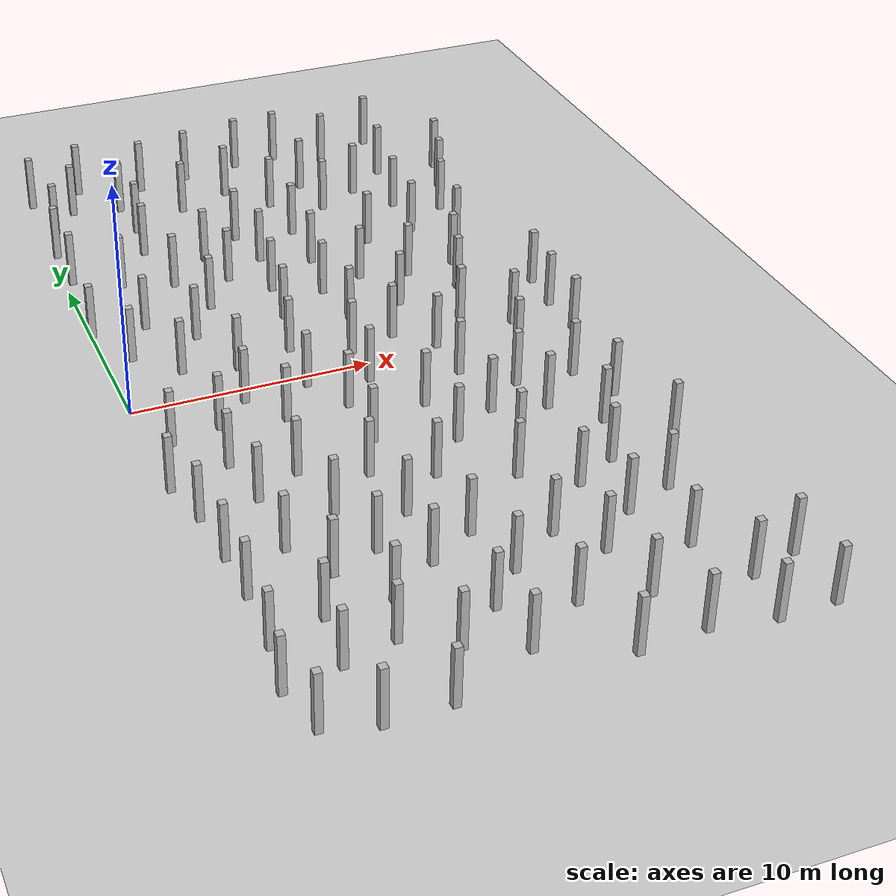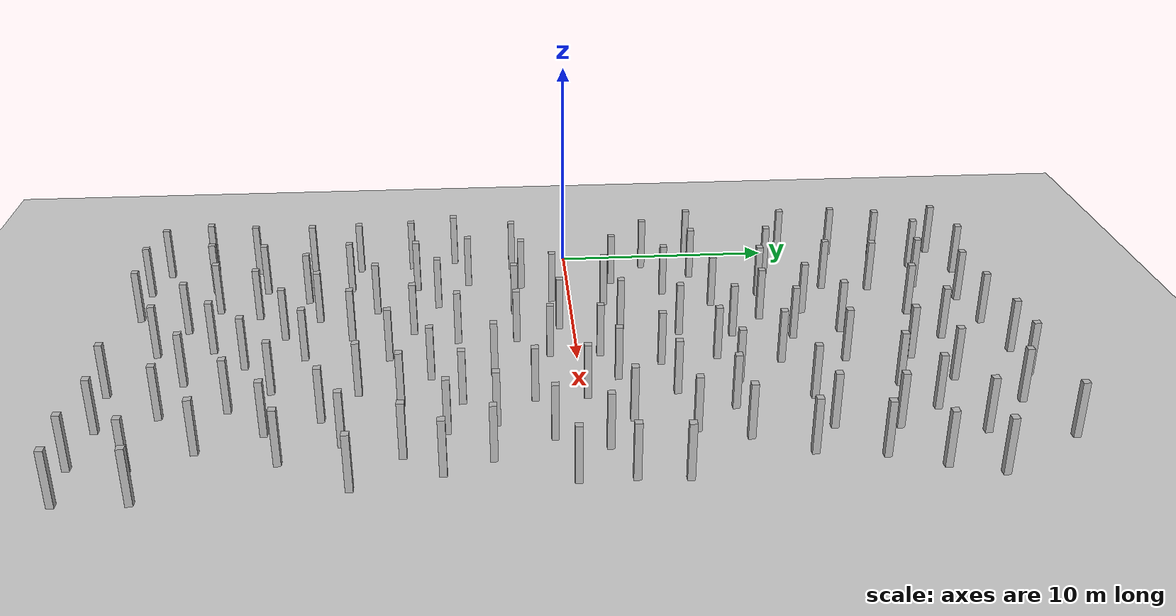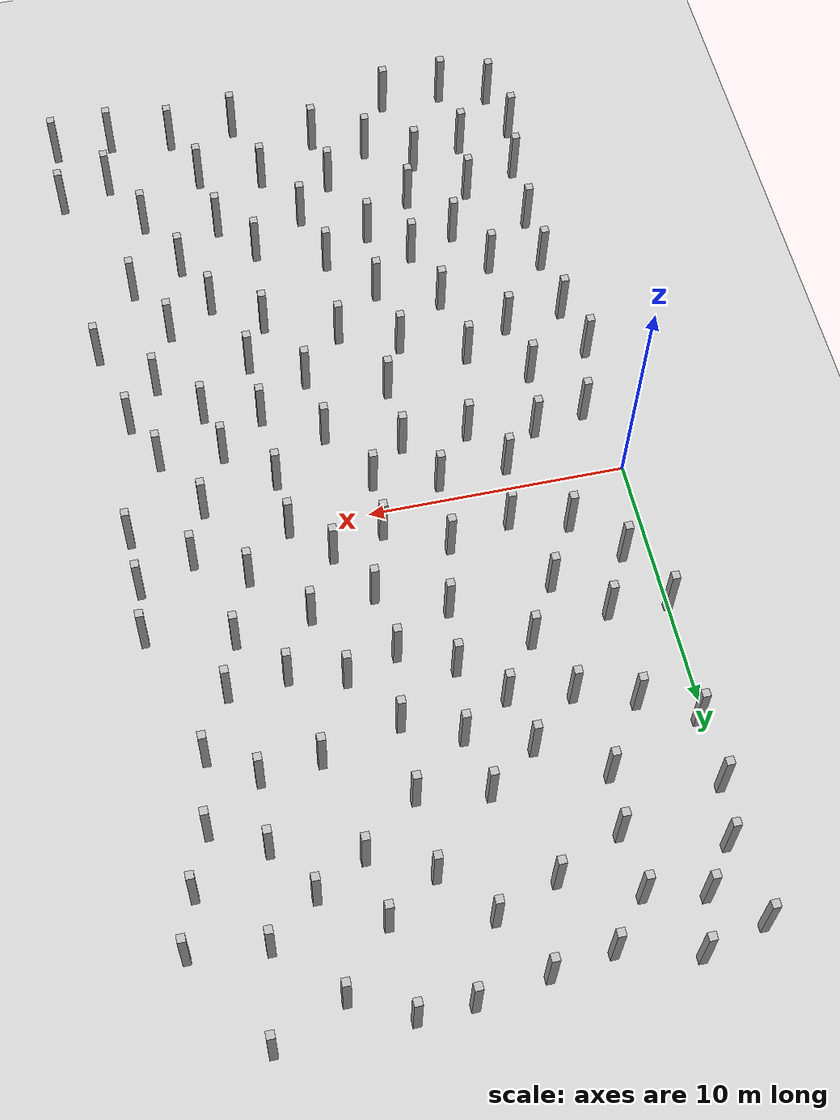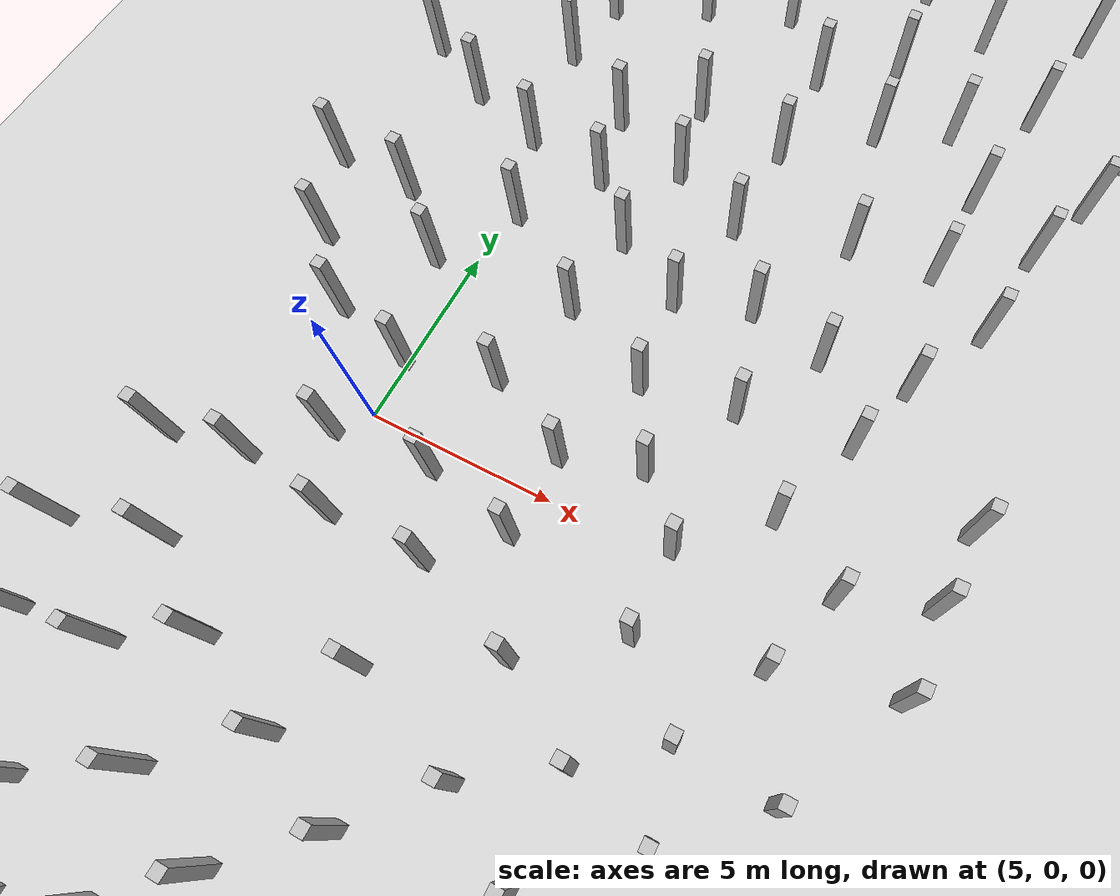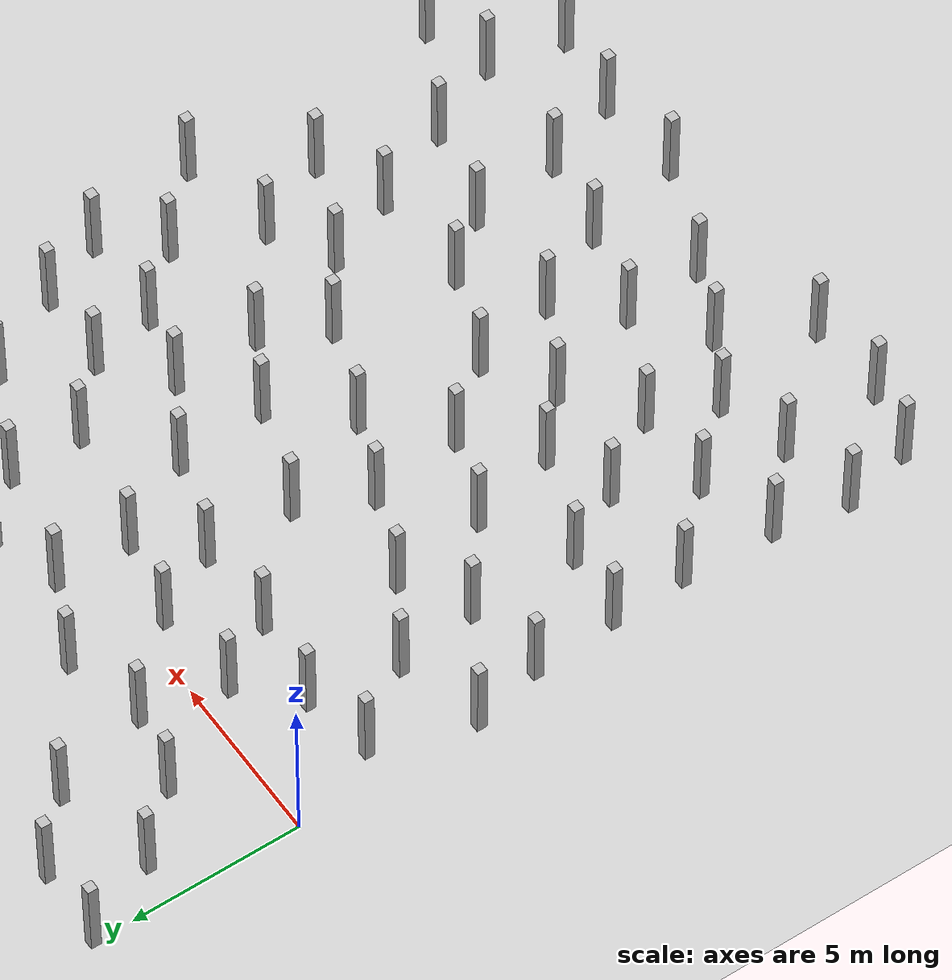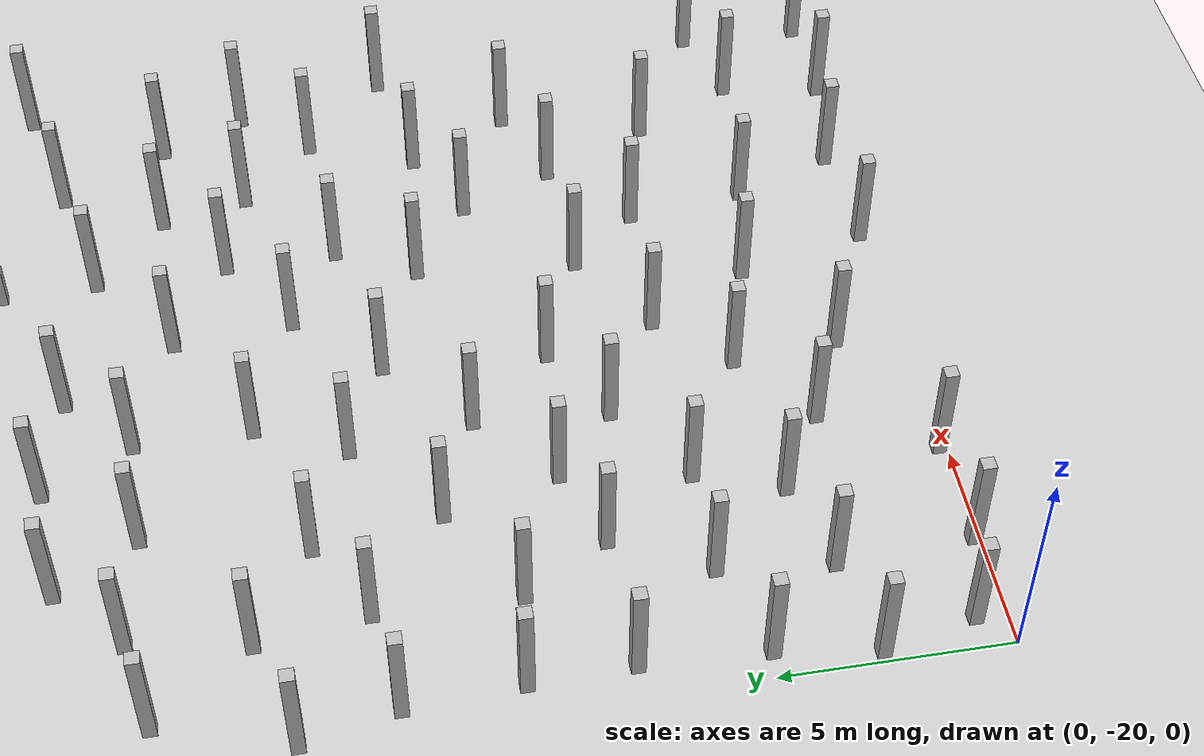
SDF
<sdf version="1.6">
 <world name="random_boxes_100x40_600">
  <include><uri>model://sun</uri></include>
  <include><uri>model://ground_plane</uri></include>
  <model name="box_6">
   <static>true</static>
   <pose>17.730 8.715 1.250 0 0 0</pose>
   <link name="link">
    <visual name="visual"><geometry><box><size>0.3 0.3 2.5</size></box></geometry></visual>
    <collision name="collision"><geometry><box><size>0.3 0.3 2.5</size></box></geometry></collision>
   </link>
  </model>
  <model name="box_9">
   <static>true</static>
   <pose>18.113 11.450 1.250 0 0 0</pose>
   <link name="link">
    <visual name="visual"><geometry><box><size>0.3 0.3 2.5</size></box></geometry></visual>
    <collision name="collision"><geometry><box><size>0.3 0.3 2.5</size></box></geometry></collision>
   </link>
  </model>
  <model name="box_10">
   <static>true</static>
   <pose>19.135 3.637 1.250 0 0 0</pose>
   <link name="link">
    <visual name="visual"><geometry><box><size>0.3 0.3 2.5</size></box></geometry></visual>
    <collision name="collision"><geometry><box><size>0.3 0.3 2.5</size></box></geometry></collision>
   </link>
  </model>
  <model name="box_13">
   <static>true</static>
   <pose>16.552 6.433 1.250 0 0 0</pose>
   <link name="link">
    <visual name="visual"><geometry><box><size>0.3 0.3 2.5</size></box></geometry></visual>
    <collision name="collision"><geometry><box><size>0.3 0.3 2.5</size></box></geometry></collision>
   </link>
  </model>
  <model name="box_14">
   <static>true</static>
   <pose>19.557 15.617 1.250 0 0 0</pose>
   <link name="link">
    <visual name="visual"><geometry><box><size>0.3 0.3 2.5</size></box></geometry></visual>
    <collision name="collision"><geometry><box><size>0.3 0.3 2.5</size></box></geometry></collision>
   </link>
  </model>
  <model name="box_15">
   <static>true</static>
   <pose>15.897 4.396 1.250 0 0 0</pose>
   <link name="link">
    <visual name="visual"><geometry><box><size>0.3 0.3 2.5</size></box></geometry></visual>
    <collision name="collision"><geometry><box><size>0.3 0.3 2.5</size></box></geometry></collision>
   </link>
  </model>
  <model name="box_16">
   <static>true</static>
   <pose>16.157 12.532 1.250 0 0 0</pose>
   <link name="link">
    <visual name="visual"><geometry><box><size>0.3 0.3 2.5</size></box></geometry></visual>
    <collision name="collision"><geometry><box><size>0.3 0.3 2.5</size></box></geometry></collision>
   </link>
  </model>
  <model name="box_23">
   <static>true</static>
   <pose>16.730 15.923 1.250 0 0 0</pose>
   <link name="link">
    <visual name="visual"><geometry><box><size>0.3 0.3 2.5</size></box></geometry></visual>
    <collision name="collision"><geometry><box><size>0.3 0.3 2.5</size></box></geometry></collision>
   </link>
  </model>
  <model name="box_25">
   <static>true</static>
   <pose>13.012 3.993 1.250 0 0 0</pose>
   <link name="link">
    <visual name="visual"><geometry><box><size>0.3 0.3 2.5</size></box></geometry></visual>
    <collision name="collision"><geometry><box><size>0.3 0.3 2.5</size></box></geometry></collision>
   </link>
  </model>
  <model name="box_26">
   <static>true</static>
   <pose>15.997 9.900 1.250 0 0 0</pose>
   <link name="link">
    <visual name="visual"><geometry><box><size>0.3 0.3 2.5</size></box></geometry></visual>
    <collision name="collision"><geometry><box><size>0.3 0.3 2.5</size></box></geometry></collision>
   </link>
  </model>
  <model name="box_27">
   <static>true</static>
   <pose>17.293 19.288 1.250 0 0 0</pose>
   <link name="link">
    <visual name="visual"><geometry><box><size>0.3 0.3 2.5</size></box></geometry></visual>
    <collision name="collision"><geometry><box><size>0.3 0.3 2.5</size></box></geometry></collision>
   </link>
  </model>
  <model name="box_28">
   <static>true</static>
   <pose>10.570 3.613 1.250 0 0 0</pose>
   <link name="link">
    <visual name="visual"><geometry><box><size>0.3 0.3 2.5</size></box></geometry></visual>
    <collision name="collision"><geometry><box><size>0.3 0.3 2.5</size></box></geometry></collision>
   </link>
  </model>
  <model name="box_29">
   <static>true</static>
   <pose>14.891 14.481 1.250 0 0 0</pose>
   <link name="link">
    <visual name="visual"><geometry><box><size>0.3 0.3 2.5</size></box></geometry></visual>
    <collision name="collision"><geometry><box><size>0.3 0.3 2.5</size></box></geometry></collision>
   </link>
  </model>
  <model name="box_30">
   <static>true</static>
   <pose>14.311 6.225 1.250 0 0 0</pose>
   <link name="link">
    <visual name="visual"><geometry><box><size>0.3 0.3 2.5</size></box></geometry></visual>
    <collision name="collision"><geometry><box><size>0.3 0.3 2.5</size></box></geometry></collision>
   </link>
  </model>
  <model name="box_33">
   <static>true</static>
   <pose>9.686 1.023 1.250 0 0 0</pose>
   <link name="link">
    <visual name="visual"><geometry><box><size>0.3 0.3 2.5</size></box></geometry></visual>
    <collision name="collision"><geometry><box><size>0.3 0.3 2.5</size></box></geometry></collision>
   </link>
  </model>
  <model name="box_34">
   <static>true</static>
   <pose>7.356 2.145 1.250 0 0 0</pose>
   <link name="link">
    <visual name="visual"><geometry><box><size>0.3 0.3 2.5</size></box></geometry></visual>
    <collision name="collision"><geometry><box><size>0.3 0.3 2.5</size></box></geometry></collision>
   </link>
  </model>
  <model name="box_35">
   <static>true</static>
   <pose>13.737 9.640 1.250 0 0 0</pose>
   <link name="link">
    <visual name="visual"><geometry><box><size>0.3 0.3 2.5</size></box></geometry></visual>
    <collision name="collision"><geometry><box><size>0.3 0.3 2.5</size></box></geometry></collision>
   </link>
  </model>
  <model name="box_37">
   <static>true</static>
   <pose>4.947 1.573 1.250 0 0 0</pose>
   <link name="link">
    <visual name="visual"><geometry><box><size>0.3 0.3 2.5</size></box></geometry></visual>
    <collision name="collision"><geometry><box><size>0.3 0.3 2.5</size></box></geometry></collision>
   </link>
  </model>
  <model name="box_41">
   <static>true</static>
   <pose>9.607 -1.170 1.250 0 0 0</pose>
   <link name="link">
    <visual name="visual"><geometry><box><size>0.3 0.3 2.5</size></box></geometry></visual>
    <collision name="collision"><geometry><box><size>0.3 0.3 2.5</size></box></geometry></collision>
   </link>
  </model>
  <model name="box_43">
   <static>true</static>
   <pose>10.990 -3.620 1.250 0 0 0</pose>
   <link name="link">
    <visual name="visual"><geometry><box><size>0.3 0.3 2.5</size></box></geometry></visual>
    <collision name="collision"><geometry><box><size>0.3 0.3 2.5</size></box></geometry></collision>
   </link>
  </model>
  <model name="box_44">
   <static>true</static>
   <pose>11.214 -6.315 1.250 0 0 0</pose>
   <link name="link">
    <visual name="visual"><geometry><box><size>0.3 0.3 2.5</size></box></geometry></visual>
    <collision name="collision"><geometry><box><size>0.3 0.3 2.5</size></box></geometry></collision>
   </link>
  </model>
  <model name="box_45">
   <static>true</static>
   <pose>18.938 13.570 1.250 0 0 0</pose>
   <link name="link">
    <visual name="visual"><geometry><box><size>0.3 0.3 2.5</size></box></geometry></visual>
    <collision name="collision"><geometry><box><size>0.3 0.3 2.5</size></box></geometry></collision>
   </link>
  </model>
  <model name="box_47">
   <static>true</static>
   <pose>12.987 13.457 1.250 0 0 0</pose>
   <link name="link">
    <visual name="visual"><geometry><box><size>0.3 0.3 2.5</size></box></geometry></visual>
    <collision name="collision"><geometry><box><size>0.3 0.3 2.5</size></box></geometry></collision>
   </link>
  </model>
  <model name="box_48">
   <static>true</static>
   <pose>7.132 -0.618 1.250 0 0 0</pose>
   <link name="link">
    <visual name="visual"><geometry><box><size>0.3 0.3 2.5</size></box></geometry></visual>
    <collision name="collision"><geometry><box><size>0.3 0.3 2.5</size></box></geometry></collision>
   </link>
  </model>
  <model name="box_51">
   <static>true</static>
   <pose>19.031 -0.583 1.250 0 0 0</pose>
   <link name="link">
    <visual name="visual"><geometry><box><size>0.3 0.3 2.5</size></box></geometry></visual>
    <collision name="collision"><geometry><box><size>0.3 0.3 2.5</size></box></geometry></collision>
   </link>
  </model>
  <model name="box_52">
   <static>true</static>
   <pose>14.612 18.134 1.250 0 0 0</pose>
   <link name="link">
    <visual name="visual"><geometry><box><size>0.3 0.3 2.5</size></box></geometry></visual>
    <collision name="collision"><geometry><box><size>0.3 0.3 2.5</size></box></geometry></collision>
   </link>
  </model>
  <model name="box_55">
   <static>true</static>
   <pose>8.155 -2.593 1.250 0 0 0</pose>
   <link name="link">
    <visual name="visual"><geometry><box><size>0.3 0.3 2.5</size></box></geometry></visual>
    <collision name="collision"><geometry><box><size>0.3 0.3 2.5</size></box></geometry></collision>
   </link>
  </model>
  <model name="box_57">
   <static>true</static>
   <pose>10.833 11.682 1.250 0 0 0</pose>
   <link name="link">
    <visual name="visual"><geometry><box><size>0.3 0.3 2.5</size></box></geometry></visual>
    <collision name="collision"><geometry><box><size>0.3 0.3 2.5</size></box></geometry></collision>
   </link>
  </model>
  <model name="box_58">
   <static>true</static>
   <pose>8.018 4.738 1.250 0 0 0</pose>
   <link name="link">
    <visual name="visual"><geometry><box><size>0.3 0.3 2.5</size></box></geometry></visual>
    <collision name="collision"><geometry><box><size>0.3 0.3 2.5</size></box></geometry></collision>
   </link>
  </model>
  <model name="box_59">
   <static>true</static>
   <pose>14.959 1.951 1.250 0 0 0</pose>
   <link name="link">
    <visual name="visual"><geometry><box><size>0.3 0.3 2.5</size></box></geometry></visual>
    <collision name="collision"><geometry><box><size>0.3 0.3 2.5</size></box></geometry></collision>
   </link>
  </model>
  <model name="box_60">
   <static>true</static>
   <pose>10.274 6.115 1.250 0 0 0</pose>
   <link name="link">
    <visual name="visual"><geometry><box><size>0.3 0.3 2.5</size></box></geometry></visual>
    <collision name="collision"><geometry><box><size>0.3 0.3 2.5</size></box></geometry></collision>
   </link>
  </model>
  <model name="box_61">
   <static>true</static>
   <pose>12.498 19.236 1.250 0 0 0</pose>
   <link name="link">
    <visual name="visual"><geometry><box><size>0.3 0.3 2.5</size></box></geometry></visual>
    <collision name="collision"><geometry><box><size>0.3 0.3 2.5</size></box></geometry></collision>
   </link>
  </model>
  <model name="box_62">
   <static>true</static>
   <pose>13.185 -1.972 1.250 0 0 0</pose>
   <link name="link">
    <visual name="visual"><geometry><box><size>0.3 0.3 2.5</size></box></geometry></visual>
    <collision name="collision"><geometry><box><size>0.3 0.3 2.5</size></box></geometry></collision>
   </link>
  </model>
  <model name="box_63">
   <static>true</static>
   <pose>13.267 -7.492 1.250 0 0 0</pose>
   <link name="link">
    <visual name="visual"><geometry><box><size>0.3 0.3 2.5</size></box></geometry></visual>
    <collision name="collision"><geometry><box><size>0.3 0.3 2.5</size></box></geometry></collision>
   </link>
  </model>
  <model name="box_64">
   <static>true</static>
   <pose>12.338 -9.302 1.250 0 0 0</pose>
   <link name="link">
    <visual name="visual"><geometry><box><size>0.3 0.3 2.5</size></box></geometry></visual>
    <collision name="collision"><geometry><box><size>0.3 0.3 2.5</size></box></geometry></collision>
   </link>
  </model>
  <model name="box_65">
   <static>true</static>
   <pose>14.975 -3.578 1.250 0 0 0</pose>
   <link name="link">
    <visual name="visual"><geometry><box><size>0.3 0.3 2.5</size></box></geometry></visual>
    <collision name="collision"><geometry><box><size>0.3 0.3 2.5</size></box></geometry></collision>
   </link>
  </model>
  <model name="box_66">
   <static>true</static>
   <pose>2.736 2.137 1.250 0 0 0</pose>
   <link name="link">
    <visual name="visual"><geometry><box><size>0.3 0.3 2.5</size></box></geometry></visual>
    <collision name="collision"><geometry><box><size>0.3 0.3 2.5</size></box></geometry></collision>
   </link>
  </model>
  <model name="box_67">
   <static>true</static>
   <pose>12.713 15.901 1.250 0 0 0</pose>
   <link name="link">
    <visual name="visual"><geometry><box><size>0.3 0.3 2.5</size></box></geometry></visual>
    <collision name="collision"><geometry><box><size>0.3 0.3 2.5</size></box></geometry></collision>
   </link>
  </model>
  <model name="box_68">
   <static>true</static>
   <pose>10.743 8.854 1.250 0 0 0</pose>
   <link name="link">
    <visual name="visual"><geometry><box><size>0.3 0.3 2.5</size></box></geometry></visual>
    <collision name="collision"><geometry><box><size>0.3 0.3 2.5</size></box></geometry></collision>
   </link>
  </model>
  <model name="box_70">
   <static>true</static>
   <pose>10.494 19.153 1.250 0 0 0</pose>
   <link name="link">
    <visual name="visual"><geometry><box><size>0.3 0.3 2.5</size></box></geometry></visual>
    <collision name="collision"><geometry><box><size>0.3 0.3 2.5</size></box></geometry></collision>
   </link>
  </model>
  <model name="box_71">
   <static>true</static>
   <pose>9.514 -8.173 1.250 0 0 0</pose>
   <link name="link">
    <visual name="visual"><geometry><box><size>0.3 0.3 2.5</size></box></geometry></visual>
    <collision name="collision"><geometry><box><size>0.3 0.3 2.5</size></box></geometry></collision>
   </link>
  </model>
  <model name="box_72">
   <static>true</static>
   <pose>7.847 18.748 1.250 0 0 0</pose>
   <link name="link">
    <visual name="visual"><geometry><box><size>0.3 0.3 2.5</size></box></geometry></visual>
    <collision name="collision"><geometry><box><size>0.3 0.3 2.5</size></box></geometry></collision>
   </link>
  </model>
  <model name="box_74">
   <static>true</static>
   <pose>8.293 7.130 1.250 0 0 0</pose>
   <link name="link">
    <visual name="visual"><geometry><box><size>0.3 0.3 2.5</size></box></geometry></visual>
    <collision name="collision"><geometry><box><size>0.3 0.3 2.5</size></box></geometry></collision>
   </link>
  </model>
  <model name="box_75">
   <static>true</static>
   <pose>5.351 6.628 1.250 0 0 0</pose>
   <link name="link">
    <visual name="visual"><geometry><box><size>0.3 0.3 2.5</size></box></geometry></visual>
    <collision name="collision"><geometry><box><size>0.3 0.3 2.5</size></box></geometry></collision>
   </link>
  </model>
  <model name="box_76">
   <static>true</static>
   <pose>16.117 -1.301 1.250 0 0 0</pose>
   <link name="link">
    <visual name="visual"><geometry><box><size>0.3 0.3 2.5</size></box></geometry></visual>
    <collision name="collision"><geometry><box><size>0.3 0.3 2.5</size></box></geometry></collision>
   </link>
  </model>
  <model name="box_78">
   <static>true</static>
   <pose>13.120 0.209 1.250 0 0 0</pose>
   <link name="link">
    <visual name="visual"><geometry><box><size>0.3 0.3 2.5</size></box></geometry></visual>
    <collision name="collision"><geometry><box><size>0.3 0.3 2.5</size></box></geometry></collision>
   </link>
  </model>
  <model name="box_79">
   <static>true</static>
   <pose>11.712 1.638 1.250 0 0 0</pose>
   <link name="link">
    <visual name="visual"><geometry><box><size>0.3 0.3 2.5</size></box></geometry></visual>
    <collision name="collision"><geometry><box><size>0.3 0.3 2.5</size></box></geometry></collision>
   </link>
  </model>
  <model name="box_80">
   <static>true</static>
   <pose>4.062 4.485 1.250 0 0 0</pose>
   <link name="link">
    <visual name="visual"><geometry><box><size>0.3 0.3 2.5</size></box></geometry></visual>
    <collision name="collision"><geometry><box><size>0.3 0.3 2.5</size></box></geometry></collision>
   </link>
  </model>
  <model name="box_82">
   <static>true</static>
   <pose>7.594 -9.944 1.250 0 0 0</pose>
   <link name="link">
    <visual name="visual"><geometry><box><size>0.3 0.3 2.5</size></box></geometry></visual>
    <collision name="collision"><geometry><box><size>0.3 0.3 2.5</size></box></geometry></collision>
   </link>
  </model>
  <model name="box_83">
   <static>true</static>
   <pose>8.157 -5.200 1.250 0 0 0</pose>
   <link name="link">
    <visual name="visual"><geometry><box><size>0.3 0.3 2.5</size></box></geometry></visual>
    <collision name="collision"><geometry><box><size>0.3 0.3 2.5</size></box></geometry></collision>
   </link>
  </model>
  <model name="box_85">
   <static>true</static>
   <pose>9.139 16.491 1.250 0 0 0</pose>
   <link name="link">
    <visual name="visual"><geometry><box><size>0.3 0.3 2.5</size></box></geometry></visual>
    <collision name="collision"><geometry><box><size>0.3 0.3 2.5</size></box></geometry></collision>
   </link>
  </model>
  <model name="box_86">
   <static>true</static>
   <pose>5.797 -11.557 1.250 0 0 0</pose>
   <link name="link">
    <visual name="visual"><geometry><box><size>0.3 0.3 2.5</size></box></geometry></visual>
    <collision name="collision"><geometry><box><size>0.3 0.3 2.5</size></box></geometry></collision>
   </link>
  </model>
  <model name="box_87">
   <static>true</static>
   <pose>14.249 -10.650 1.250 0 0 0</pose>
   <link name="link">
    <visual name="visual"><geometry><box><size>0.3 0.3 2.5</size></box></geometry></visual>
    <collision name="collision"><geometry><box><size>0.3 0.3 2.5</size></box></geometry></collision>
   </link>
  </model>
  <model name="box_88">
   <static>true</static>
   <pose>16.068 -9.671 1.250 0 0 0</pose>
   <link name="link">
    <visual name="visual"><geometry><box><size>0.3 0.3 2.5</size></box></geometry></visual>
    <collision name="collision"><geometry><box><size>0.3 0.3 2.5</size></box></geometry></collision>
   </link>
  </model>
  <model name="box_92">
   <static>true</static>
   <pose>6.787 15.615 1.250 0 0 0</pose>
   <link name="link">
    <visual name="visual"><geometry><box><size>0.3 0.3 2.5</size></box></geometry></visual>
    <collision name="collision"><geometry><box><size>0.3 0.3 2.5</size></box></geometry></collision>
   </link>
  </model>
  <model name="box_95">
   <static>true</static>
   <pose>5.149 -8.977 1.250 0 0 0</pose>
   <link name="link">
    <visual name="visual"><geometry><box><size>0.3 0.3 2.5</size></box></geometry></visual>
    <collision name="collision"><geometry><box><size>0.3 0.3 2.5</size></box></geometry></collision>
   </link>
  </model>
  <model name="box_98">
   <static>true</static>
   <pose>5.330 -14.362 1.250 0 0 0</pose>
   <link name="link">
    <visual name="visual"><geometry><box><size>0.3 0.3 2.5</size></box></geometry></visual>
    <collision name="collision"><geometry><box><size>0.3 0.3 2.5</size></box></geometry></collision>
   </link>
  </model>
  <model name="box_99">
   <static>true</static>
   <pose>8.660 9.831 1.250 0 0 0</pose>
   <link name="link">
    <visual name="visual"><geometry><box><size>0.3 0.3 2.5</size></box></geometry></visual>
    <collision name="collision"><geometry><box><size>0.3 0.3 2.5</size></box></geometry></collision>
   </link>
  </model>
  <model name="box_101">
   <static>true</static>
   <pose>2.793 -14.334 1.250 0 0 0</pose>
   <link name="link">
    <visual name="visual"><geometry><box><size>0.3 0.3 2.5</size></box></geometry></visual>
    <collision name="collision"><geometry><box><size>0.3 0.3 2.5</size></box></geometry></collision>
   </link>
  </model>
  <model name="box_103">
   <static>true</static>
   <pose>17.202 -11.999 1.250 0 0 0</pose>
   <link name="link">
    <visual name="visual"><geometry><box><size>0.3 0.3 2.5</size></box></geometry></visual>
    <collision name="collision"><geometry><box><size>0.3 0.3 2.5</size></box></geometry></collision>
   </link>
  </model>
  <model name="box_105">
   <static>true</static>
   <pose>0.733 -12.309 1.250 0 0 0</pose>
   <link name="link">
    <visual name="visual"><geometry><box><size>0.3 0.3 2.5</size></box></geometry></visual>
    <collision name="collision"><geometry><box><size>0.3 0.3 2.5</size></box></geometry></collision>
   </link>
  </model>
  <model name="box_106">
   <static>true</static>
   <pose>15.127 -12.809 1.250 0 0 0</pose>
   <link name="link">
    <visual name="visual"><geometry><box><size>0.3 0.3 2.5</size></box></geometry></visual>
    <collision name="collision"><geometry><box><size>0.3 0.3 2.5</size></box></geometry></collision>
   </link>
  </model>
  <model name="box_108">
   <static>true</static>
   <pose>0.665 -10.064 1.250 0 0 0</pose>
   <link name="link">
    <visual name="visual"><geometry><box><size>0.3 0.3 2.5</size></box></geometry></visual>
    <collision name="collision"><geometry><box><size>0.3 0.3 2.5</size></box></geometry></collision>
   </link>
  </model>
  <model name="box_110">
   <static>true</static>
   <pose>8.229 12.087 1.250 0 0 0</pose>
   <link name="link">
    <visual name="visual"><geometry><box><size>0.3 0.3 2.5</size></box></geometry></visual>
    <collision name="collision"><geometry><box><size>0.3 0.3 2.5</size></box></geometry></collision>
   </link>
  </model>
  <model name="box_111">
   <static>true</static>
   <pose>4.726 -6.159 1.250 0 0 0</pose>
   <link name="link">
    <visual name="visual"><geometry><box><size>0.3 0.3 2.5</size></box></geometry></visual>
    <collision name="collision"><geometry><box><size>0.3 0.3 2.5</size></box></geometry></collision>
   </link>
  </model>
  <model name="box_114">
   <static>true</static>
   <pose>5.542 18.401 1.250 0 0 0</pose>
   <link name="link">
    <visual name="visual"><geometry><box><size>0.3 0.3 2.5</size></box></geometry></visual>
    <collision name="collision"><geometry><box><size>0.3 0.3 2.5</size></box></geometry></collision>
   </link>
  </model>
  <model name="box_115">
   <static>true</static>
   <pose>17.429 -3.727 1.250 0 0 0</pose>
   <link name="link">
    <visual name="visual"><geometry><box><size>0.3 0.3 2.5</size></box></geometry></visual>
    <collision name="collision"><geometry><box><size>0.3 0.3 2.5</size></box></geometry></collision>
   </link>
  </model>
  <model name="box_116">
   <static>true</static>
   <pose>9.264 -11.854 1.250 0 0 0</pose>
   <link name="link">
    <visual name="visual"><geometry><box><size>0.3 0.3 2.5</size></box></geometry></visual>
    <collision name="collision"><geometry><box><size>0.3 0.3 2.5</size></box></geometry></collision>
   </link>
  </model>
  <model name="box_117">
   <static>true</static>
   <pose>7.227 -7.199 1.250 0 0 0</pose>
   <link name="link">
    <visual name="visual"><geometry><box><size>0.3 0.3 2.5</size></box></geometry></visual>
    <collision name="collision"><geometry><box><size>0.3 0.3 2.5</size></box></geometry></collision>
   </link>
  </model>
  <model name="box_120">
   <static>true</static>
   <pose>4.638 -16.270 1.250 0 0 0</pose>
   <link name="link">
    <visual name="visual"><geometry><box><size>0.3 0.3 2.5</size></box></geometry></visual>
    <collision name="collision"><geometry><box><size>0.3 0.3 2.5</size></box></geometry></collision>
   </link>
  </model>
  <model name="box_121">
   <static>true</static>
   <pose>18.986 1.625 1.250 0 0 0</pose>
   <link name="link">
    <visual name="visual"><geometry><box><size>0.3 0.3 2.5</size></box></geometry></visual>
    <collision name="collision"><geometry><box><size>0.3 0.3 2.5</size></box></geometry></collision>
   </link>
  </model>
  <model name="box_122">
   <static>true</static>
   <pose>5.568 -2.623 1.250 0 0 0</pose>
   <link name="link">
    <visual name="visual"><geometry><box><size>0.3 0.3 2.5</size></box></geometry></visual>
    <collision name="collision"><geometry><box><size>0.3 0.3 2.5</size></box></geometry></collision>
   </link>
  </model>
  <model name="box_123">
   <static>true</static>
   <pose>17.014 -7.233 1.250 0 0 0</pose>
   <link name="link">
    <visual name="visual"><geometry><box><size>0.3 0.3 2.5</size></box></geometry></visual>
    <collision name="collision"><geometry><box><size>0.3 0.3 2.5</size></box></geometry></collision>
   </link>
  </model>
  <model name="box_125">
   <static>true</static>
   <pose>6.503 -17.379 1.250 0 0 0</pose>
   <link name="link">
    <visual name="visual"><geometry><box><size>0.3 0.3 2.5</size></box></geometry></visual>
    <collision name="collision"><geometry><box><size>0.3 0.3 2.5</size></box></geometry></collision>
   </link>
  </model>
  <model name="box_127">
   <static>true</static>
   <pose>2.509 -4.770 1.250 0 0 0</pose>
   <link name="link">
    <visual name="visual"><geometry><box><size>0.3 0.3 2.5</size></box></geometry></visual>
    <collision name="collision"><geometry><box><size>0.3 0.3 2.5</size></box></geometry></collision>
   </link>
  </model>
  <model name="box_128">
   <static>true</static>
   <pose>13.319 -14.522 1.250 0 0 0</pose>
   <link name="link">
    <visual name="visual"><geometry><box><size>0.3 0.3 2.5</size></box></geometry></visual>
    <collision name="collision"><geometry><box><size>0.3 0.3 2.5</size></box></geometry></collision>
   </link>
  </model>
  <model name="box_129">
   <static>true</static>
   <pose>16.262 -15.307 1.250 0 0 0</pose>
   <link name="link">
    <visual name="visual"><geometry><box><size>0.3 0.3 2.5</size></box></geometry></visual>
    <collision name="collision"><geometry><box><size>0.3 0.3 2.5</size></box></geometry></collision>
   </link>
  </model>
  <model name="box_130">
   <static>true</static>
   <pose>4.448 9.019 1.250 0 0 0</pose>
   <link name="link">
    <visual name="visual"><geometry><box><size>0.3 0.3 2.5</size></box></geometry></visual>
    <collision name="collision"><geometry><box><size>0.3 0.3 2.5</size></box></geometry></collision>
   </link>
  </model>
  <model name="box_131">
   <static>true</static>
   <pose>2.680 19.144 1.250 0 0 0</pose>
   <link name="link">
    <visual name="visual"><geometry><box><size>0.3 0.3 2.5</size></box></geometry></visual>
    <collision name="collision"><geometry><box><size>0.3 0.3 2.5</size></box></geometry></collision>
   </link>
  </model>
  <model name="box_134">
   <static>true</static>
   <pose>6.350 10.738 1.250 0 0 0</pose>
   <link name="link">
    <visual name="visual"><geometry><box><size>0.3 0.3 2.5</size></box></geometry></visual>
    <collision name="collision"><geometry><box><size>0.3 0.3 2.5</size></box></geometry></collision>
   </link>
  </model>
  <model name="box_135">
   <static>true</static>
   <pose>8.381 -15.938 1.250 0 0 0</pose>
   <link name="link">
    <visual name="visual"><geometry><box><size>0.3 0.3 2.5</size></box></geometry></visual>
    <collision name="collision"><geometry><box><size>0.3 0.3 2.5</size></box></geometry></collision>
   </link>
  </model>
  <model name="box_136">
   <static>true</static>
   <pose>2.301 6.039 1.250 0 0 0</pose>
   <link name="link">
    <visual name="visual"><geometry><box><size>0.3 0.3 2.5</size></box></geometry></visual>
    <collision name="collision"><geometry><box><size>0.3 0.3 2.5</size></box></geometry></collision>
   </link>
  </model>
  <model name="box_137">
   <static>true</static>
   <pose>0.036 6.131 1.250 0 0 0</pose>
   <link name="link">
    <visual name="visual"><geometry><box><size>0.3 0.3 2.5</size></box></geometry></visual>
    <collision name="collision"><geometry><box><size>0.3 0.3 2.5</size></box></geometry></collision>
   </link>
  </model>
  <model name="box_138">
   <static>true</static>
   <pose>7.337 -12.948 1.250 0 0 0</pose>
   <link name="link">
    <visual name="visual"><geometry><box><size>0.3 0.3 2.5</size></box></geometry></visual>
    <collision name="collision"><geometry><box><size>0.3 0.3 2.5</size></box></geometry></collision>
   </link>
  </model>
  <model name="box_141">
   <static>true</static>
   <pose>0.506 -7.538 1.250 0 0 0</pose>
   <link name="link">
    <visual name="visual"><geometry><box><size>0.3 0.3 2.5</size></box></geometry></visual>
    <collision name="collision"><geometry><box><size>0.3 0.3 2.5</size></box></geometry></collision>
   </link>
  </model>
  <model name="box_143">
   <static>true</static>
   <pose>15.419 -5.550 1.250 0 0 0</pose>
   <link name="link">
    <visual name="visual"><geometry><box><size>0.3 0.3 2.5</size></box></geometry></visual>
    <collision name="collision"><geometry><box><size>0.3 0.3 2.5</size></box></geometry></collision>
   </link>
  </model>
  <model name="box_144">
   <static>true</static>
   <pose>0.024 -5.466 1.250 0 0 0</pose>
   <link name="link">
    <visual name="visual"><geometry><box><size>0.3 0.3 2.5</size></box></geometry></visual>
    <collision name="collision"><geometry><box><size>0.3 0.3 2.5</size></box></geometry></collision>
   </link>
  </model>
  <model name="box_147">
   <static>true</static>
   <pose>1.939 17.154 1.250 0 0 0</pose>
   <link name="link">
    <visual name="visual"><geometry><box><size>0.3 0.3 2.5</size></box></geometry></visual>
    <collision name="collision"><geometry><box><size>0.3 0.3 2.5</size></box></geometry></collision>
   </link>
  </model>
  <model name="box_148">
   <static>true</static>
   <pose>5.208 -19.794 1.250 0 0 0</pose>
   <link name="link">
    <visual name="visual"><geometry><box><size>0.3 0.3 2.5</size></box></geometry></visual>
    <collision name="collision"><geometry><box><size>0.3 0.3 2.5</size></box></geometry></collision>
   </link>
  </model>
  <model name="box_149">
   <static>true</static>
   <pose>3.891 -12.258 1.250 0 0 0</pose>
   <link name="link">
    <visual name="visual"><geometry><box><size>0.3 0.3 2.5</size></box></geometry></visual>
    <collision name="collision"><geometry><box><size>0.3 0.3 2.5</size></box></geometry></collision>
   </link>
  </model>
  <model name="box_151">
   <static>true</static>
   <pose>11.995 -12.954 1.250 0 0 0</pose>
   <link name="link">
    <visual name="visual"><geometry><box><size>0.3 0.3 2.5</size></box></geometry></visual>
    <collision name="collision"><geometry><box><size>0.3 0.3 2.5</size></box></geometry></collision>
   </link>
  </model>
  <model name="box_155">
   <static>true</static>
   <pose>12.245 6.755 1.250 0 0 0</pose>
   <link name="link">
    <visual name="visual"><geometry><box><size>0.3 0.3 2.5</size></box></geometry></visual>
    <collision name="collision"><geometry><box><size>0.3 0.3 2.5</size></box></geometry></collision>
   </link>
  </model>
  <model name="box_158">
   <static>true</static>
   <pose>0.906 -2.638 1.250 0 0 0</pose>
   <link name="link">
    <visual name="visual"><geometry><box><size>0.3 0.3 2.5</size></box></geometry></visual>
    <collision name="collision"><geometry><box><size>0.3 0.3 2.5</size></box></geometry></collision>
   </link>
  </model>
  <model name="box_164">
   <static>true</static>
   <pose>13.647 -17.234 1.250 0 0 0</pose>
   <link name="link">
    <visual name="visual"><geometry><box><size>0.3 0.3 2.5</size></box></geometry></visual>
    <collision name="collision"><geometry><box><size>0.3 0.3 2.5</size></box></geometry></collision>
   </link>
  </model>
  <model name="box_165">
   <static>true</static>
   <pose>4.257 14.431 1.250 0 0 0</pose>
   <link name="link">
    <visual name="visual"><geometry><box><size>0.3 0.3 2.5</size></box></geometry></visual>
    <collision name="collision"><geometry><box><size>0.3 0.3 2.5</size></box></geometry></collision>
   </link>
  </model>
  <model name="box_166">
   <static>true</static>
   <pose>2.790 -10.345 1.250 0 0 0</pose>
   <link name="link">
    <visual name="visual"><geometry><box><size>0.3 0.3 2.5</size></box></geometry></visual>
    <collision name="collision"><geometry><box><size>0.3 0.3 2.5</size></box></geometry></collision>
   </link>
  </model>
  <model name="box_170">
   <static>true</static>
   <pose>17.414 -17.662 1.250 0 0 0</pose>
   <link name="link">
    <visual name="visual"><geometry><box><size>0.3 0.3 2.5</size></box></geometry></visual>
    <collision name="collision"><geometry><box><size>0.3 0.3 2.5</size></box></geometry></collision>
   </link>
  </model>
  <model name="box_171">
   <static>true</static>
   <pose>1.113 3.802 1.250 0 0 0</pose>
   <link name="link">
    <visual name="visual"><geometry><box><size>0.3 0.3 2.5</size></box></geometry></visual>
    <collision name="collision"><geometry><box><size>0.3 0.3 2.5</size></box></geometry></collision>
   </link>
  </model>
  <model name="box_172">
   <static>true</static>
   <pose>0.332 18.523 1.250 0 0 0</pose>
   <link name="link">
    <visual name="visual"><geometry><box><size>0.3 0.3 2.5</size></box></geometry></visual>
    <collision name="collision"><geometry><box><size>0.3 0.3 2.5</size></box></geometry></collision>
   </link>
  </model>
  <model name="box_173">
   <static>true</static>
   <pose>0.728 15.548 1.250 0 0 0</pose>
   <link name="link">
    <visual name="visual"><geometry><box><size>0.3 0.3 2.5</size></box></geometry></visual>
    <collision name="collision"><geometry><box><size>0.3 0.3 2.5</size></box></geometry></collision>
   </link>
  </model>
  <model name="box_176">
   <static>true</static>
   <pose>17.005 -19.963 1.250 0 0 0</pose>
   <link name="link">
    <visual name="visual"><geometry><box><size>0.3 0.3 2.5</size></box></geometry></visual>
    <collision name="collision"><geometry><box><size>0.3 0.3 2.5</size></box></geometry></collision>
   </link>
  </model>
  <model name="box_184">
   <static>true</static>
   <pose>11.075 -16.729 1.250 0 0 0</pose>
   <link name="link">
    <visual name="visual"><geometry><box><size>0.3 0.3 2.5</size></box></geometry></visual>
    <collision name="collision"><geometry><box><size>0.3 0.3 2.5</size></box></geometry></collision>
   </link>
  </model>
  <model name="box_186">
   <static>true</static>
   <pose>4.441 -0.820 1.250 0 0 0</pose>
   <link name="link">
    <visual name="visual"><geometry><box><size>0.3 0.3 2.5</size></box></geometry></visual>
    <collision name="collision"><geometry><box><size>0.3 0.3 2.5</size></box></geometry></collision>
   </link>
  </model>
  <model name="box_190">
   <static>true</static>
   <pose>2.512 -16.816 1.250 0 0 0</pose>
   <link name="link">
    <visual name="visual"><geometry><box><size>0.3 0.3 2.5</size></box></geometry></visual>
    <collision name="collision"><geometry><box><size>0.3 0.3 2.5</size></box></geometry></collision>
   </link>
  </model>
  <model name="box_197">
   <static>true</static>
   <pose>19.030 -9.124 1.250 0 0 0</pose>
   <link name="link">
    <visual name="visual"><geometry><box><size>0.3 0.3 2.5</size></box></geometry></visual>
    <collision name="collision"><geometry><box><size>0.3 0.3 2.5</size></box></geometry></collision>
   </link>
  </model>
  <model name="box_201">
   <static>true</static>
   <pose>13.234 -4.960 1.250 0 0 0</pose>
   <link name="link">
    <visual name="visual"><geometry><box><size>0.3 0.3 2.5</size></box></geometry></visual>
    <collision name="collision"><geometry><box><size>0.3 0.3 2.5</size></box></geometry></collision>
   </link>
  </model>
  <model name="box_202">
   <static>true</static>
   <pose>2.291 9.749 1.250 0 0 0</pose>
   <link name="link">
    <visual name="visual"><geometry><box><size>0.3 0.3 2.5</size></box></geometry></visual>
    <collision name="collision"><geometry><box><size>0.3 0.3 2.5</size></box></geometry></collision>
   </link>
  </model>
  <model name="box_207">
   <static>true</static>
   <pose>19.312 -19.892 1.250 0 0 0</pose>
   <link name="link">
    <visual name="visual"><geometry><box><size>0.3 0.3 2.5</size></box></geometry></visual>
    <collision name="collision"><geometry><box><size>0.3 0.3 2.5</size></box></geometry></collision>
   </link>
  </model>
  <model name="box_220">
   <static>true</static>
   <pose>8.594 -18.345 1.250 0 0 0</pose>
   <link name="link">
    <visual name="visual"><geometry><box><size>0.3 0.3 2.5</size></box></geometry></visual>
    <collision name="collision"><geometry><box><size>0.3 0.3 2.5</size></box></geometry></collision>
   </link>
  </model>
  <model name="box_229">
   <static>true</static>
   <pose>14.496 -19.554 1.250 0 0 0</pose>
   <link name="link">
    <visual name="visual"><geometry><box><size>0.3 0.3 2.5</size></box></geometry></visual>
    <collision name="collision"><geometry><box><size>0.3 0.3 2.5</size></box></geometry></collision>
   </link>
  </model>
  <model name="box_244">
   <static>true</static>
   <pose>10.760 14.593 1.250 0 0 0</pose>
   <link name="link">
    <visual name="visual"><geometry><box><size>0.3 0.3 2.5</size></box></geometry></visual>
    <collision name="collision"><geometry><box><size>0.3 0.3 2.5</size></box></geometry></collision>
   </link>
  </model>
  <model name="box_245">
   <static>true</static>
   <pose>3.982 12.250 1.250 0 0 0</pose>
   <link name="link">
    <visual name="visual"><geometry><box><size>0.3 0.3 2.5</size></box></geometry></visual>
    <collision name="collision"><geometry><box><size>0.3 0.3 2.5</size></box></geometry></collision>
   </link>
  </model>
  <model name="box_253">
   <static>true</static>
   <pose>0.284 13.400 1.250 0 0 0</pose>
   <link name="link">
    <visual name="visual"><geometry><box><size>0.3 0.3 2.5</size></box></geometry></visual>
    <collision name="collision"><geometry><box><size>0.3 0.3 2.5</size></box></geometry></collision>
   </link>
  </model>
  <model name="box_264">
   <static>true</static>
   <pose>2.956 -2.227 1.250 0 0 0</pose>
   <link name="link">
    <visual name="visual"><geometry><box><size>0.3 0.3 2.5</size></box></geometry></visual>
    <collision name="collision"><geometry><box><size>0.3 0.3 2.5</size></box></geometry></collision>
   </link>
  </model>
  <model name="box_272">
   <static>true</static>
   <pose>11.801 -19.736 1.250 0 0 0</pose>
   <link name="link">
    <visual name="visual"><geometry><box><size>0.3 0.3 2.5</size></box></geometry></visual>
    <collision name="collision"><geometry><box><size>0.3 0.3 2.5</size></box></geometry></collision>
   </link>
  </model>
  <model name="box_275">
   <static>true</static>
   <pose>0.256 -17.247 1.250 0 0 0</pose>
   <link name="link">
    <visual name="visual"><geometry><box><size>0.3 0.3 2.5</size></box></geometry></visual>
    <collision name="collision"><geometry><box><size>0.3 0.3 2.5</size></box></geometry></collision>
   </link>
  </model>
  <model name="box_295">
   <static>true</static>
   <pose>0.342 10.808 1.250 0 0 0</pose>
   <link name="link">
    <visual name="visual"><geometry><box><size>0.3 0.3 2.5</size></box></geometry></visual>
    <collision name="collision"><geometry><box><size>0.3 0.3 2.5</size></box></geometry></collision>
   </link>
  </model>
  <model name="box_304">
   <static>true</static>
   <pose>9.850 -14.372 1.250 0 0 0</pose>
   <link name="link">
    <visual name="visual"><geometry><box><size>0.3 0.3 2.5</size></box></geometry></visual>
    <collision name="collision"><geometry><box><size>0.3 0.3 2.5</size></box></geometry></collision>
   </link>
  </model>
  <model name="box_312">
   <static>true</static>
   <pose>2.697 -19.843 1.250 0 0 0</pose>
   <link name="link">
    <visual name="visual"><geometry><box><size>0.3 0.3 2.5</size></box></geometry></visual>
    <collision name="collision"><geometry><box><size>0.3 0.3 2.5</size></box></geometry></collision>
   </link>
  </model>
  <model name="box_363">
   <static>true</static>
   <pose>2.858 -7.207 1.250 0 0 0</pose>
   <link name="link">
    <visual name="visual"><geometry><box><size>0.3 0.3 2.5</size></box></geometry></visual>
    <collision name="collision"><geometry><box><size>0.3 0.3 2.5</size></box></geometry></collision>
   </link>
  </model>
  <model name="box_425">
   <static>true</static>
   <pose>0.731 -19.292 1.250 0 0 0</pose>
   <link name="link">
    <visual name="visual"><geometry><box><size>0.3 0.3 2.5</size></box></geometry></visual>
    <collision name="collision"><geometry><box><size>0.3 0.3 2.5</size></box></geometry></collision>
   </link>
  </model>
  <model name="box_431">
   <static>true</static>
   <pose>6.807 8.650 1.250 0 0 0</pose>
   <link name="link">
    <visual name="visual"><geometry><box><size>0.3 0.3 2.5</size></box></geometry></visual>
    <collision name="collision"><geometry><box><size>0.3 0.3 2.5</size></box></geometry></collision>
   </link>
  </model>
  <model name="box_464">
   <static>true</static>
   <pose>18.283 -5.658 1.250 0 0 0</pose>
   <link name="link">
    <visual name="visual"><geometry><box><size>0.3 0.3 2.5</size></box></geometry></visual>
    <collision name="collision"><geometry><box><size>0.3 0.3 2.5</size></box></geometry></collision>
   </link>
  </model>
  <model name="box_469">
   <static>true</static>
   <pose>4.083 16.716 1.250 0 0 0</pose>
   <link name="link">
    <visual name="visual"><geometry><box><size>0.3 0.3 2.5</size></box></geometry></visual>
    <collision name="collision"><geometry><box><size>0.3 0.3 2.5</size></box></geometry></collision>
   </link>
  </model>
  <model name="box_472">
   <static>true</static>
   <pose>0.606 -15.048 1.250 0 0 0</pose>
   <link name="link">
    <visual name="visual"><geometry><box><size>0.3 0.3 2.5</size></box></geometry></visual>
    <collision name="collision"><geometry><box><size>0.3 0.3 2.5</size></box></geometry></collision>
   </link>
  </model>
  <model name="box_496">
   <static>true</static>
   <pose>16.872 0.823 1.250 0 0 0</pose>
   <link name="link">
    <visual name="visual"><geometry><box><size>0.3 0.3 2.5</size></box></geometry></visual>
    <collision name="collision"><geometry><box><size>0.3 0.3 2.5</size></box></geometry></collision>
   </link>
  </model>
  <model name="box_567">
   <static>true</static>
   <pose>19.393 -17.048 1.250 0 0 0</pose>
   <link name="link">
    <visual name="visual"><geometry><box><size>0.3 0.3 2.5</size></box></geometry></visual>
    <collision name="collision"><geometry><box><size>0.3 0.3 2.5</size></box></geometry></collision>
   </link>
  </model>
 </world>
</sdf>
